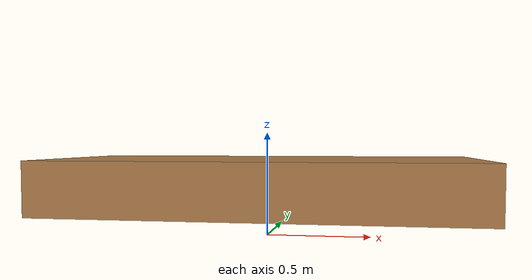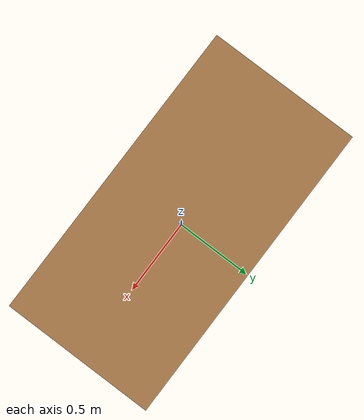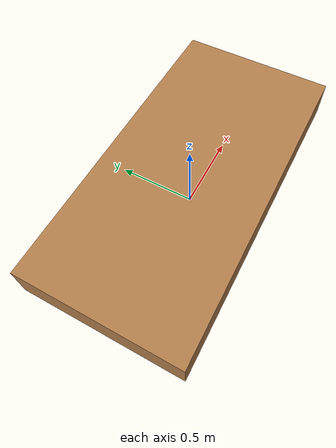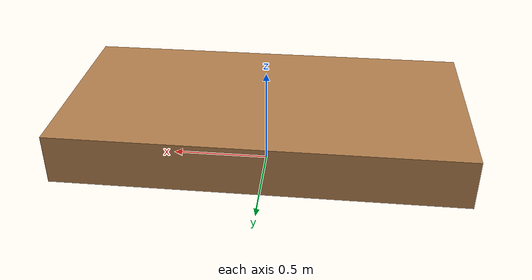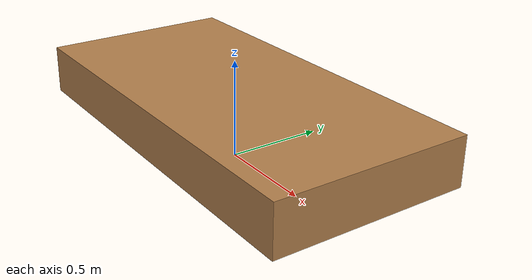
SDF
<?xml version="1.0"?>

<sdf version="1.4">
    <model name="chassis">
        <static>false</static>
        <pose>0 0 0 0 0 0</pose><!-- global pose -->

        <link name="platform">
            <pose>0 0 0.25 0 0 0</pose>
            <inertial>
                <pose>0 0 0 0 0 0</pose>
                <inertia>
                    <!-- http://en.wikipedia.org/wiki/List_of_moment_of_inertia_tensors -->
                    <ixx>0.5</ixx>
                    <ixy>0.0</ixy>
                    <ixz>0.0</ixz>
                    <iyy>1</iyy>
                    <iyz>0.0</iyz>
                    <izz>0.1</izz>
                </inertia>
                <mass>20</mass>
            </inertial>
            <collision name="platform_collision">
                <geometry>
                    <box>
                        <size>2 1 0.25</size>
                    </box>
                </geometry>
            </collision>
            <visual name="platform_visual">
                <geometry>
                    <box>
                        <size>2 1 0.25</size>
                    </box>
                </geometry>
                <material>
                    <script>
                        <uri>file://media/materials/scripts/gazebo.material</uri>
                        <name>Gazebo/Wood</name>
                    </script>
                </material>
            </visual>
        </link>
    </model>
</sdf>
